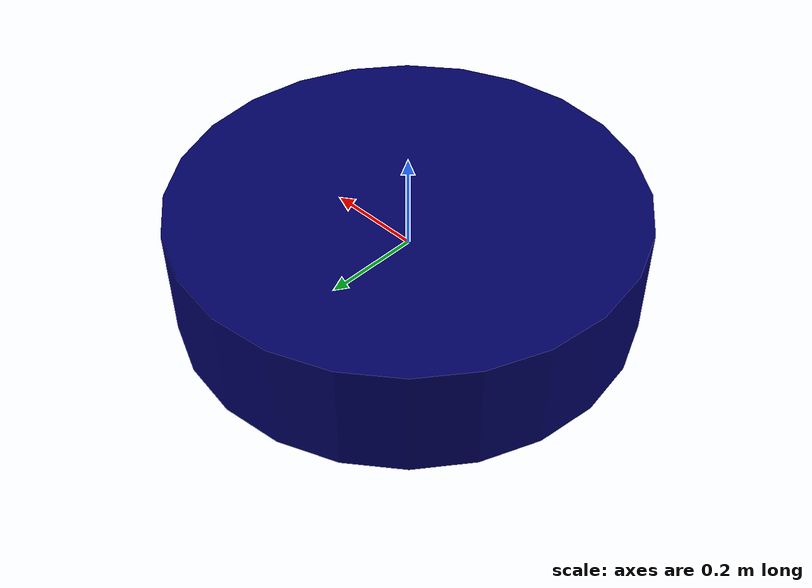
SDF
<?xml version='1.0'?>
<sdf version='1.6'>
  <model name='cylinder'>
    <link name='link_0'>
      <pose frame=''>0 0 0 0 -0 0</pose>
      <inertial>
        <mass>6.28495906751</mass>
        <inertia>
          <ixx>0.145833</ixx>
          <ixy>0</ixy>
          <ixz>0</ixz>
          <iyy>0.145833</iyy>
          <iyz>0</iyz>
          <izz>0.125</izz>
        </inertia>
        <pose frame=''>0 0 0 0 -0 0</pose>
      </inertial>
      <gravity>1</gravity>
      <self_collide>0</self_collide>
      <kinematic>0</kinematic>
      <visual name='visual'>
        <pose frame=''>0 0 0 0 -0 0</pose>
        <geometry>
          <cylinder>
            <radius>0.474701185094</radius>
            <length>0.235724316737</length>
          </cylinder>
        </geometry>
        <material>
          <lighting>1</lighting>
          <script>
            <uri>file://media/materials/scripts/gazebo.material</uri>
            <name>Gazebo/Grey</name>
          </script>
          <ambient>0 0 0.7 1</ambient>
          <diffuse>0 0 0.4 1</diffuse>
          <specular>0 0 0.5 1</specular>
          <emissive>0 0 0.8 1</emissive>
          <shader type='vertex'>
            <normal_map>__default__</normal_map>
          </shader>
        </material>
        <cast_shadows>1</cast_shadows>
        <transparency>0</transparency>
      </visual>
      <collision name='collision'>
        <laser_retro>0</laser_retro>
        <max_contacts>10</max_contacts>
        <pose frame=''>0 0 0 0 -0 0</pose>
        <geometry>
          <cylinder>
            <radius>0.474701185094</radius>
            <length>0.235724316737</length>
          </cylinder>
        </geometry>
        <surface>
          <friction>
            <ode>
              <mu>1</mu>
              <mu2>1</mu2>
              <fdir1>0 0 0</fdir1>
              <slip1>0</slip1>
              <slip2>0</slip2>
            </ode>
            <torsional>
              <coefficient>1</coefficient>
              <patch_radius>0</patch_radius>
              <surface_radius>0</surface_radius>
              <use_patch_radius>1</use_patch_radius>
              <ode>
                <slip>0</slip>
              </ode>
            </torsional>
          </friction>
          <bounce>
            <restitution_coefficient>0</restitution_coefficient>
            <threshold>1e+06</threshold>
          </bounce>
          <contact>
            <collide_without_contact>0</collide_without_contact>
            <collide_without_contact_bitmask>1</collide_without_contact_bitmask>
            <collide_bitmask>1</collide_bitmask>
            <ode>
              <soft_cfm>0</soft_cfm>
              <soft_erp>0.2</soft_erp>
              <kp>1e+13</kp>
              <kd>1</kd>
              <max_vel>0.01</max_vel>
              <min_depth>0</min_depth>
            </ode>
            <bullet>
              <split_impulse>1</split_impulse>
              <split_impulse_penetration_threshold>-0.01</split_impulse_penetration_threshold>
              <soft_cfm>0</soft_cfm>
              <soft_erp>0.2</soft_erp>
              <kp>1e+13</kp>
              <kd>1</kd>
            </bullet>
          </contact>
        </surface>
      </collision>
      <velocity_decay>
        <linear>0.001</linear>
        <angular>0.001</angular>
      </velocity_decay>
    </link>
    <static>0</static>
    <allow_auto_disable>1</allow_auto_disable>
  </model>
</sdf>
